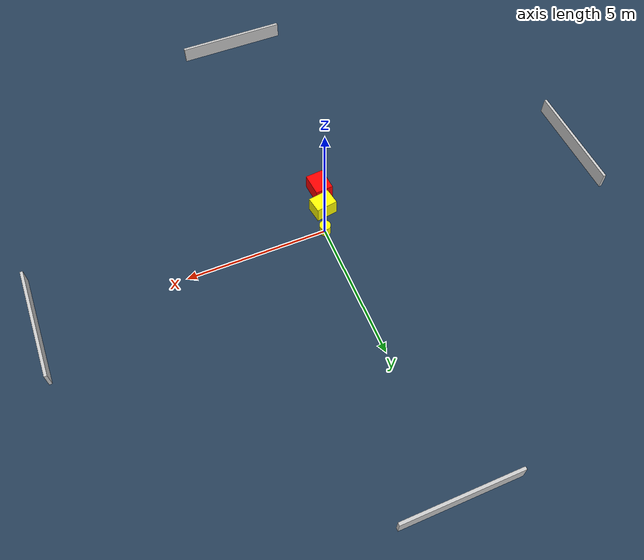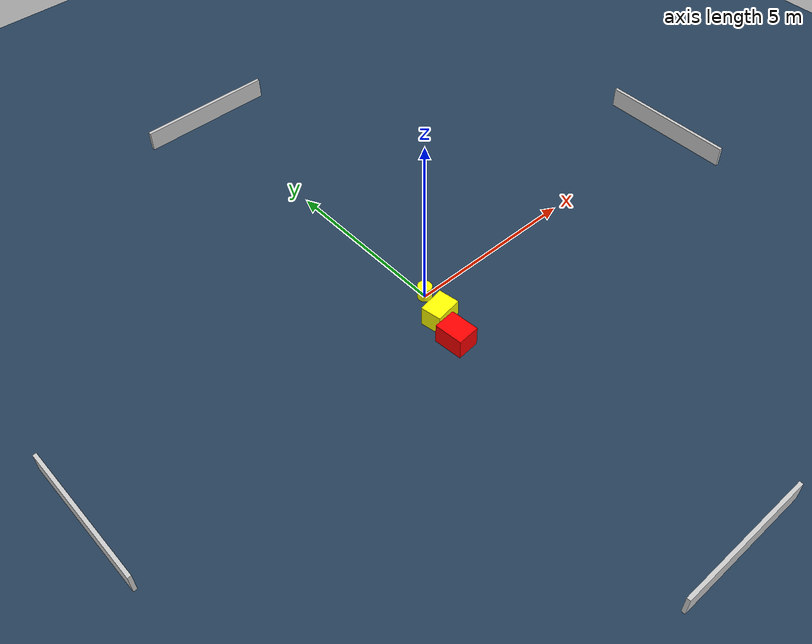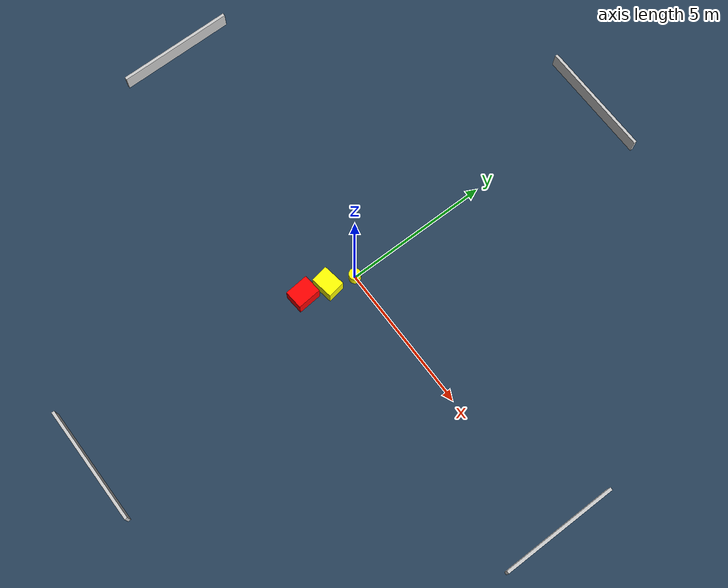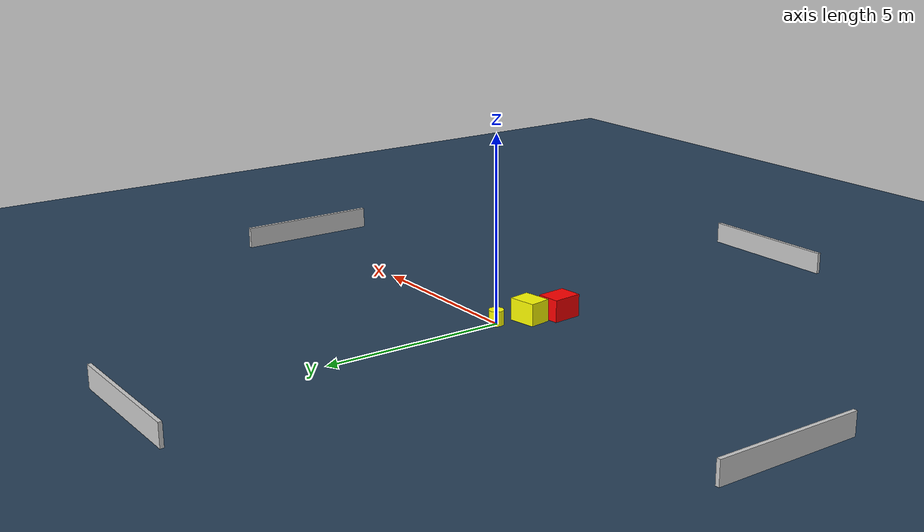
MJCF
<?xml version="1.0" ?>
<mujoco model="generated_environment">
  <option timestep="0.01" integrator="RK4" cone="elliptic"/>
  <default>
    <geom density="1"/>
  </default>
  <asset>
    <texture builtin="gradient" height="3072" name="skybox" rgb1="0.3 0.5 0.7" rgb2="0 0 0" type="skybox" width="512"/>
    <texture builtin="checker" height="300" name="groundplane" rgb1="0.2 0.3 0.4" rgb2="0.1 0.2 0.3" type="2d" width="300"/>
    <material name="groundplane" reflectance="0.2" texrepeat="5 5" texture="groundplane"/>
  </asset>
  <worldbody>
    <light dir="0 0 -1" directional="true" pos="0 0 1.5"/>
    <geom condim="3" friction="0.5 0.005 0.001" material="groundplane" name="floor" pos="0 0 0" size="0 0 0.05" type="plane"/>
    <body name="walls">
      <geom name="wall_1" condim="4" pos="-10.0 0.0 0.3" rgba="0.800000011920929 0.800000011920929 0.800000011920929 1.0" size="0.05 2.0 0.3" type="box"/>
      <geom name="wall_2" condim="4" pos="10.0 0.0 0.3" rgba="0.800000011920929 0.800000011920929 0.800000011920929 1.0" size="0.05 2.0 0.3" type="box"/>
      <geom name="wall_3" condim="4" pos="0.0 -10.0 0.3" rgba="0.800000011920929 0.800000011920929 0.800000011920929 1.0" size="2.0 0.05 0.3" type="box"/>
      <geom name="wall_4" condim="4" pos="0.0 10.0 0.3" rgba="0.800000011920929 0.800000011920929 0.800000011920929 1.0" size="2.0 0.05 0.3" type="box"/>
    </body>
    <body name="robot">
      <joint name="joint_x" type="slide" pos="0 0 0" axis="1 0 0"/>
      <joint name="joint_y" type="slide" pos="0 0 0" axis="0 1 0"/>
      <geom name="robot" type="cylinder" pos="0.0 0.0 0.2" size="0.2 0.2 0.0" mass="5.0" friction="1.0 0.005 0.0001" condim="4" rgba="1.0 1.0 0.0 1.0"/>
    </body>
    <body name="obstacle_1_movable">
      <geom name="obstacle_1_movable" condim="4" pos="-0.27479955461964783 -0.8662246214609118 0.3" euler="0 0 99.00930572292177" friction="0.0 0.005 0.001" rgba="1.0 1.0 0.0 1.0" size="0.29730943743610155 0.3844425190613513 0.3" type="box" mass="0.1"/>
      <joint type="free"/>
    </body>
    <body name="obstacle_2_static">
      <geom name="obstacle_2_static" condim="4" pos="-0.47627753423948965 -1.6877937163417143 0.3" euler="0 0 4.884214336366357" friction="0.0 0.005 0.001" rgba="1.0 0.0 0.0 1.0" size="0.3194700383579307 0.4087837109028531 0.3" type="box"/>
    </body>
  </worldbody>
  <actuator>
    <motor name="actuator_x" joint="joint_x" gear="1" ctrlrange="-1 1"/>
    <motor name="actuator_y" joint="joint_y" gear="1" ctrlrange="-1 1"/>
  </actuator>
</mujoco>
